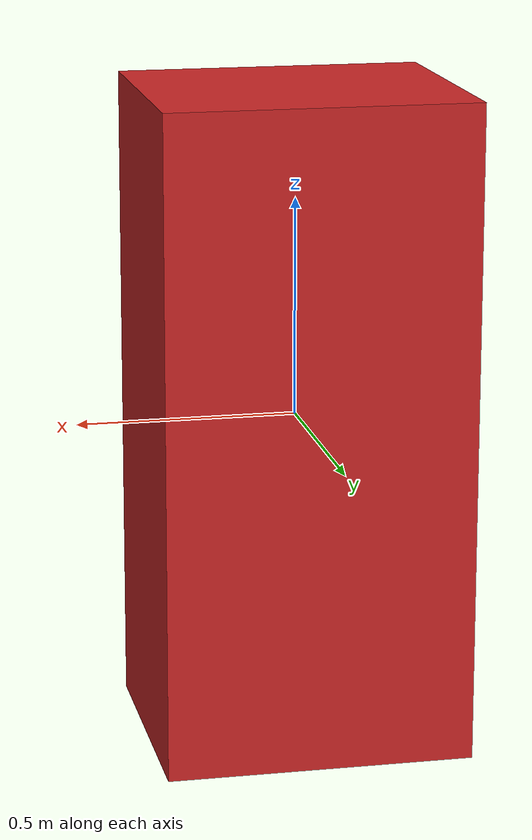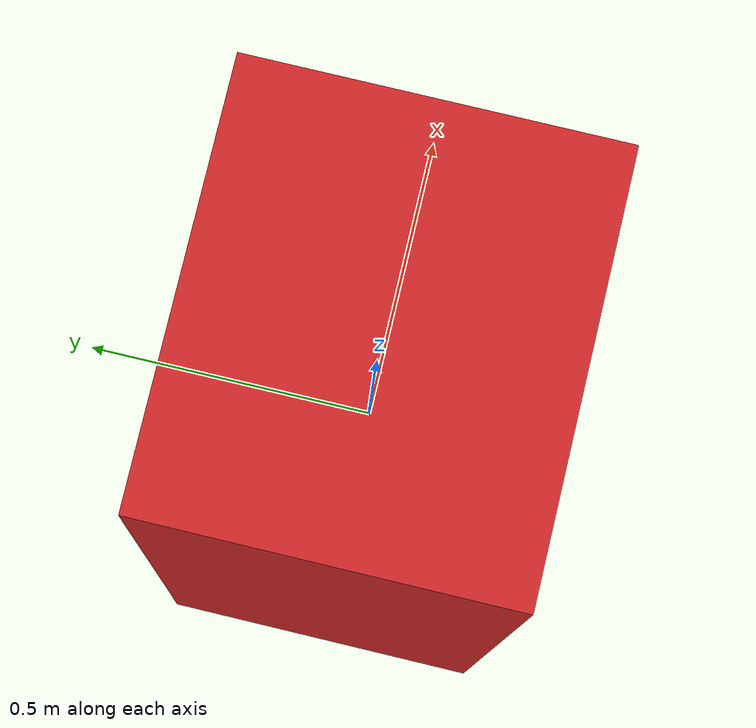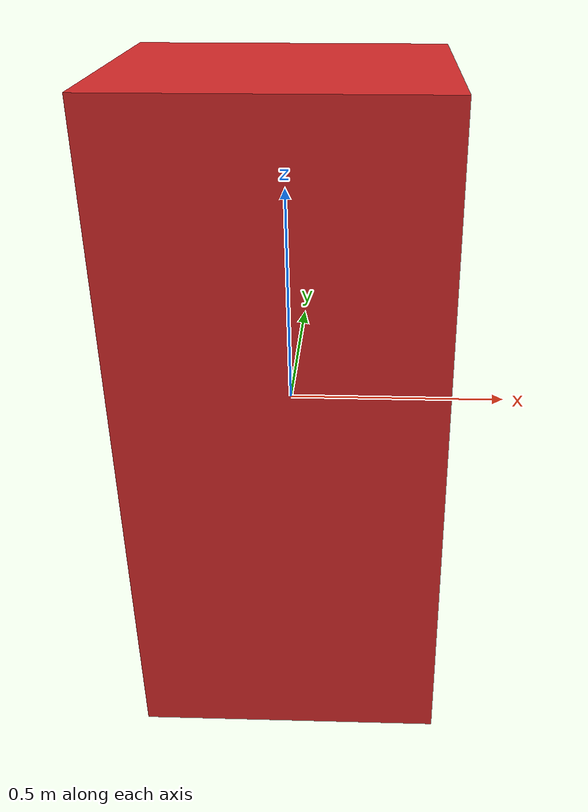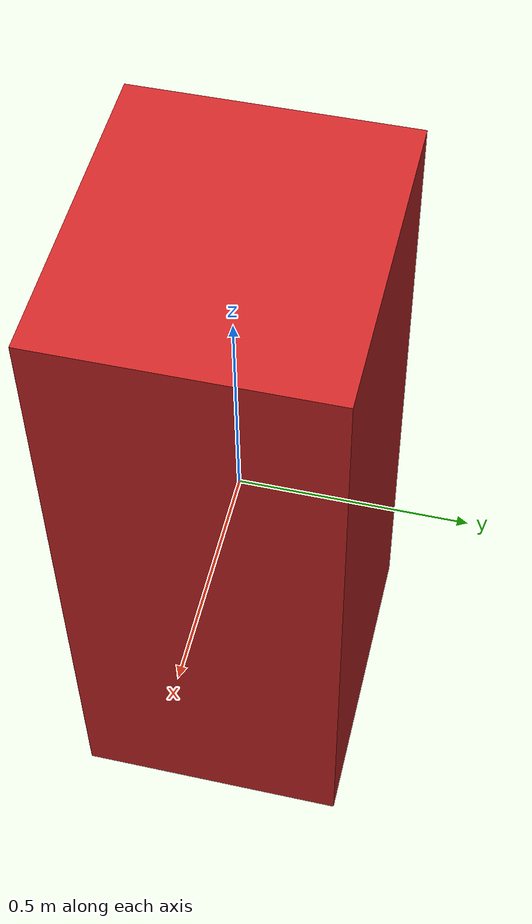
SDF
<?xml version="1.0" encoding="UTF-8"?>
<sdf version='1.4'>
  <model name="baggage_A_1.5">
      <static>true</static>
      <link name="link">
         <collision name="collision">
            <geometry>
               <box>
                  <size>0.7 0.6 1.5</size>
               </box>
            </geometry>
         </collision>
         <visual name="visual">
            <cast_shadows>false</cast_shadows>
            <geometry>
               <box>
                  <size>0.7 0.6 1.5</size>
               </box>
            </geometry>
            <material>
               <script>
                  <uri>file://media/materials/scripts/gazebo.material</uri>
                  <name>Gazebo/Red</name>
               </script>
            </material>
         </visual>
      </link>
  </model>
</sdf>
